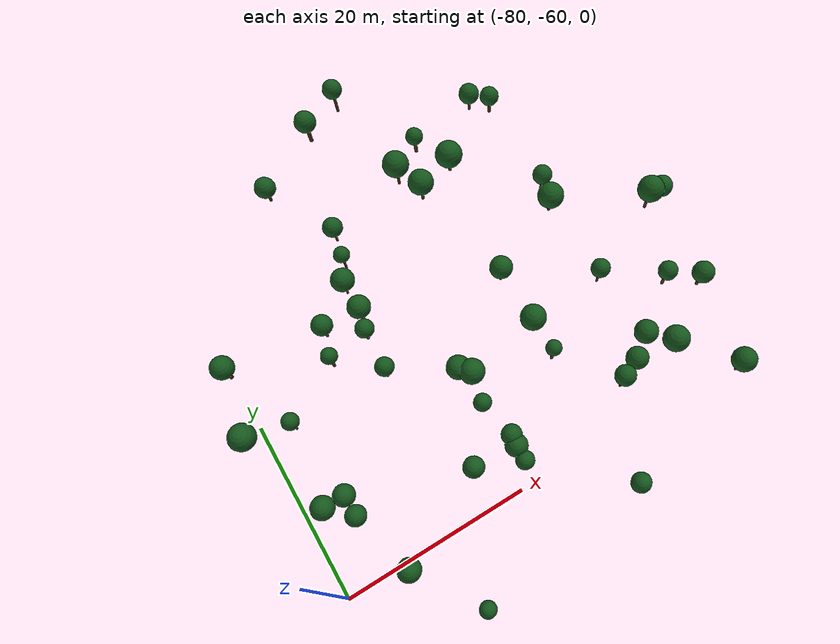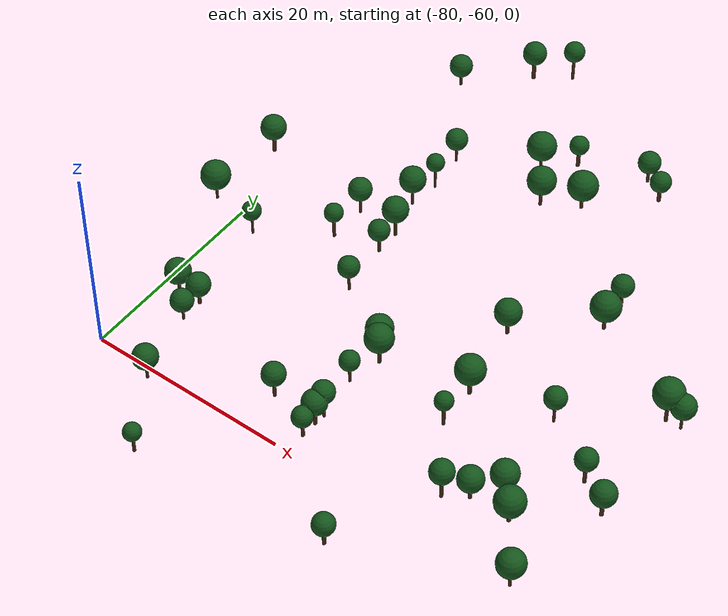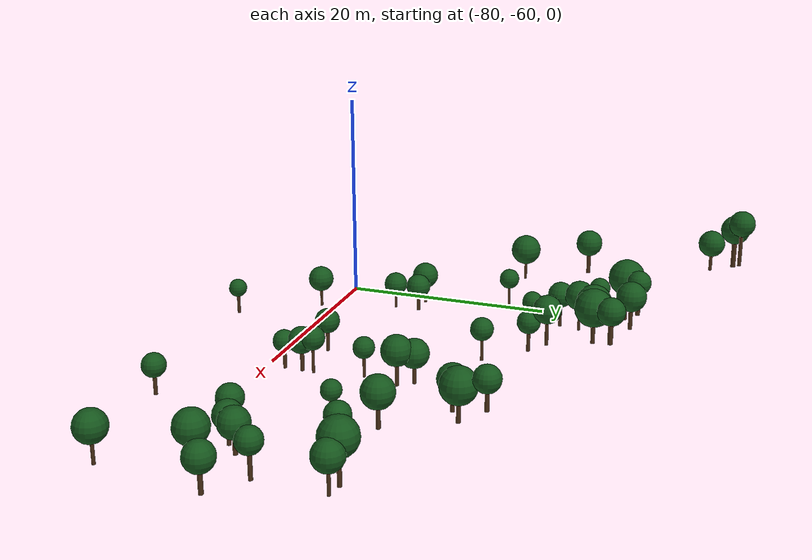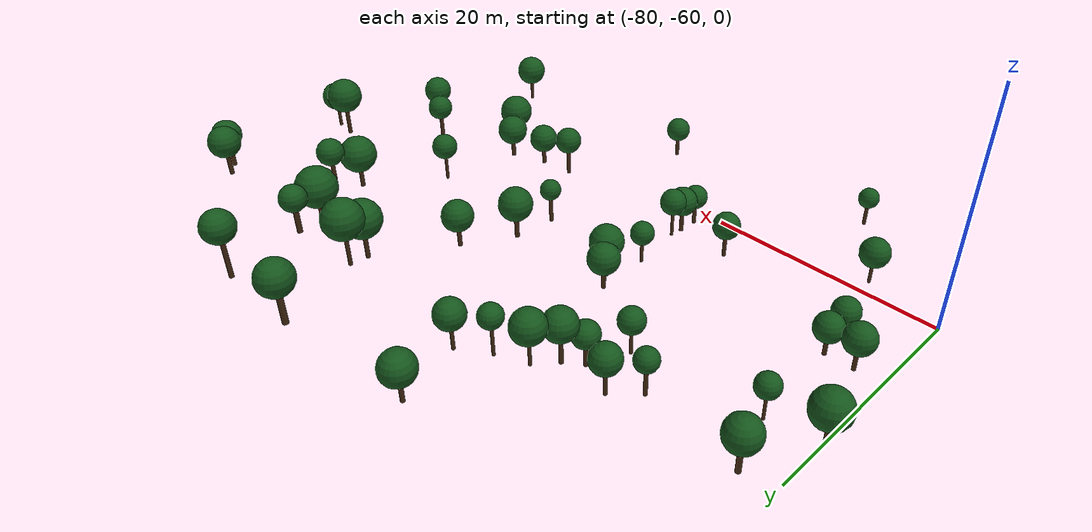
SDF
<sdf version="1.10">
 <world name="hiking_lora_world">
  <model name="lower_dense_forest_trees">
   <static>true</static>
   <link name="trees">
    <visual name="trunk_0">
     <pose>-76.614 -42.5169 2.585 0 0 0</pose>
     <geometry><cylinder><radius>0.1109</radius><length>2.4331</length></cylinder></geometry>
     <material><ambient>0.2016 0.12240000000000001 0.0576 1</ambient><diffuse>0.28 0.17 0.08 1</diffuse></material>
    </visual>
    <visual name="canopy_0">
     <pose>-76.614 -42.5169 4.3161 0 0 0</pose>
     <geometry><sphere><radius>0.9356</radius></sphere></geometry>
     <material>
      <ambient>0.0576 0.24480000000000002 0.07919999999999999 1</ambient>
      <diffuse>0.08 0.34 0.11 1</diffuse>
     </material>
    </visual>
    <visual name="trunk_1">
     <pose>-64.9791 -35.9901 4.2843 0 0 0</pose>
     <geometry><cylinder><radius>0.1581</radius><length>2.5914</length></cylinder></geometry>
     <material><ambient>0.2016 0.12240000000000001 0.0576 1</ambient><diffuse>0.28 0.17 0.08 1</diffuse></material>
    </visual>
    <visual name="canopy_1">
     <pose>-64.9791 -35.9901 6.2754 0 0 0</pose>
     <geometry><sphere><radius>1.2644</radius></sphere></geometry>
     <material>
      <ambient>0.0576 0.24480000000000002 0.07919999999999999 1</ambient>
      <diffuse>0.08 0.34 0.11 1</diffuse>
     </material>
    </visual>
    <visual name="trunk_2">
     <pose>-75.5056 -53.8502 1.2799 0 0 0</pose>
     <geometry><cylinder><radius>0.123</radius><length>1.8598</length></cylinder></geometry>
     <material><ambient>0.2016 0.12240000000000001 0.0576 1</ambient><diffuse>0.28 0.17 0.08 1</diffuse></material>
    </visual>
    <visual name="canopy_2">
     <pose>-75.5056 -53.8502 2.8226 0 0 0</pose>
     <geometry><sphere><radius>1.114</radius></sphere></geometry>
     <material>
      <ambient>0.0576 0.24480000000000002 0.07919999999999999 1</ambient>
      <diffuse>0.08 0.34 0.11 1</diffuse>
     </material>
    </visual>
    <visual name="trunk_3">
     <pose>-49.5615 -49.6476 1.6504 0 0 0</pose>
     <geometry><cylinder><radius>0.165</radius><length>2.6007</length></cylinder></geometry>
     <material><ambient>0.2016 0.12240000000000001 0.0576 1</ambient><diffuse>0.28 0.17 0.08 1</diffuse></material>
    </visual>
    <visual name="canopy_3">
     <pose>-49.5615 -49.6476 3.4428 0 0 0</pose>
     <geometry><sphere><radius>0.8948</radius></sphere></geometry>
     <material>
      <ambient>0.0576 0.24480000000000002 0.07919999999999999 1</ambient>
      <diffuse>0.08 0.34 0.11 1</diffuse>
     </material>
    </visual>
    <visual name="trunk_4">
     <pose>-63.9276 -31.3282 7.3882 0 0 0</pose>
     <geometry><cylinder><radius>0.1149</radius><length>2.6266</length></cylinder></geometry>
     <material><ambient>0.2016 0.12240000000000001 0.0576 1</ambient><diffuse>0.28 0.17 0.08 1</diffuse></material>
    </visual>
    <visual name="canopy_4">
     <pose>-63.9276 -31.3282 9.1751 0 0 0</pose>
     <geometry><sphere><radius>0.8612</radius></sphere></geometry>
     <material>
      <ambient>0.0576 0.24480000000000002 0.07919999999999999 1</ambient>
      <diffuse>0.08 0.34 0.11 1</diffuse>
     </material>
    </visual>
    <visual name="trunk_5">
     <pose>-38.4187 -55.8014 2.8603 0 0 0</pose>
     <geometry><cylinder><radius>0.1857</radius><length>1.8001</length></cylinder></geometry>
     <material><ambient>0.2016 0.12240000000000001 0.0576 1</ambient><diffuse>0.28 0.17 0.08 1</diffuse></material>
    </visual>
    <visual name="canopy_5">
     <pose>-38.4187 -55.8014 4.5536 0 0 0</pose>
     <geometry><sphere><radius>1.4423</radius></sphere></geometry>
     <material>
      <ambient>0.0576 0.24480000000000002 0.07919999999999999 1</ambient>
      <diffuse>0.08 0.34 0.11 1</diffuse>
     </material>
    </visual>
    <visual name="trunk_6">
     <pose>-41.6457 -34.5903 8.6055 0 0 0</pose>
     <geometry><cylinder><radius>0.1597</radius><length>1.8486</length></cylinder></geometry>
     <material><ambient>0.2016 0.12240000000000001 0.0576 1</ambient><diffuse>0.28 0.17 0.08 1</diffuse></material>
    </visual>
    <visual name="canopy_6">
     <pose>-41.6457 -34.5903 10.1004 0 0 0</pose>
     <geometry><sphere><radius>1.0375</radius></sphere></geometry>
     <material>
      <ambient>0.0576 0.24480000000000002 0.07919999999999999 1</ambient>
      <diffuse>0.08 0.34 0.11 1</diffuse>
     </material>
    </visual>
    <visual name="trunk_7">
     <pose>-43.3475 -26.7072 13.9483 0 0 0</pose>
     <geometry><cylinder><radius>0.1753</radius><length>1.7565</length></cylinder></geometry>
     <material><ambient>0.2016 0.12240000000000001 0.0576 1</ambient><diffuse>0.28 0.17 0.08 1</diffuse></material>
    </visual>
    <visual name="canopy_7">
     <pose>-43.3475 -26.7072 15.3506 0 0 0</pose>
     <geometry><sphere><radius>0.9527</radius></sphere></geometry>
     <material>
      <ambient>0.0576 0.24480000000000002 0.07919999999999999 1</ambient>
      <diffuse>0.08 0.34 0.11 1</diffuse>
     </material>
    </visual>
    <visual name="trunk_8">
     <pose>-69.17 -35.7753 4.3756 0 0 0</pose>
     <geometry><cylinder><radius>0.1408</radius><length>2.3556</length></cylinder></geometry>
     <material><ambient>0.2016 0.12240000000000001 0.0576 1</ambient><diffuse>0.28 0.17 0.08 1</diffuse></material>
    </visual>
    <visual name="canopy_8">
     <pose>-69.17 -35.7753 6.1782 0 0 0</pose>
     <geometry><sphere><radius>1.1361</radius></sphere></geometry>
     <material>
      <ambient>0.0576 0.24480000000000002 0.07919999999999999 1</ambient>
      <diffuse>0.08 0.34 0.11 1</diffuse>
     </material>
    </visual>
    <visual name="trunk_9">
     <pose>-32.4104 -41.618 6.9314 0 0 0</pose>
     <geometry><cylinder><radius>0.1631</radius><length>2.7642</length></cylinder></geometry>
     <material><ambient>0.2016 0.12240000000000001 0.0576 1</ambient><diffuse>0.28 0.17 0.08 1</diffuse></material>
    </visual>
    <visual name="canopy_9">
     <pose>-32.4104 -41.618 9.1032 0 0 0</pose>
     <geometry><sphere><radius>1.4358</radius></sphere></geometry>
     <material>
      <ambient>0.0576 0.24480000000000002 0.07919999999999999 1</ambient>
      <diffuse>0.08 0.34 0.11 1</diffuse>
     </material>
    </visual>
    <visual name="trunk_10">
     <pose>-65.0804 -33.2287 5.954 0 0 0</pose>
     <geometry><cylinder><radius>0.1191</radius><length>2.4591</length></cylinder></geometry>
     <material><ambient>0.2016 0.12240000000000001 0.0576 1</ambient><diffuse>0.28 0.17 0.08 1</diffuse></material>
    </visual>
    <visual name="canopy_10">
     <pose>-65.0804 -33.2287 7.8734 0 0 0</pose>
     <geometry><sphere><radius>1.2543</radius></sphere></geometry>
     <material>
      <ambient>0.0576 0.24480000000000002 0.07919999999999999 1</ambient>
      <diffuse>0.08 0.34 0.11 1</diffuse>
     </material>
    </visual>
    <visual name="trunk_11">
     <pose>-53.4656 -29.7979 10.0758 0 0 0</pose>
     <geometry><cylinder><radius>0.15</radius><length>2.2625</length></cylinder></geometry>
     <material><ambient>0.2016 0.12240000000000001 0.0576 1</ambient><diffuse>0.28 0.17 0.08 1</diffuse></material>
    </visual>
    <visual name="canopy_11">
     <pose>-53.4656 -29.7979 11.9419 0 0 0</pose>
     <geometry><sphere><radius>1.3361</radius></sphere></geometry>
     <material>
      <ambient>0.0576 0.24480000000000002 0.07919999999999999 1</ambient>
      <diffuse>0.08 0.34 0.11 1</diffuse>
     </material>
    </visual>
    <visual name="trunk_12">
     <pose>-30.8941 -41.6924 6.8024 0 0 0</pose>
     <geometry><cylinder><radius>0.1278</radius><length>2.1732</length></cylinder></geometry>
     <material><ambient>0.2016 0.12240000000000001 0.0576 1</ambient><diffuse>0.28 0.17 0.08 1</diffuse></material>
    </visual>
    <visual name="canopy_12">
     <pose>-30.8941 -41.6924 8.5277 0 0 0</pose>
     <geometry><sphere><radius>1.1614</radius></sphere></geometry>
     <material>
      <ambient>0.0576 0.24480000000000002 0.07919999999999999 1</ambient>
      <diffuse>0.08 0.34 0.11 1</diffuse>
     </material>
    </visual>
    <visual name="trunk_13">
     <pose>-70.096 -38.5743 3.0629 0 0 0</pose>
     <geometry><cylinder><radius>0.154</radius><length>2.5491</length></cylinder></geometry>
     <material><ambient>0.2016 0.12240000000000001 0.0576 1</ambient><diffuse>0.28 0.17 0.08 1</diffuse></material>
    </visual>
    <visual name="canopy_13">
     <pose>-70.096 -38.5743 4.8388 0 0 0</pose>
     <geometry><sphere><radius>0.9116</radius></sphere></geometry>
     <material>
      <ambient>0.0576 0.24480000000000002 0.07919999999999999 1</ambient>
      <diffuse>0.08 0.34 0.11 1</diffuse>
     </material>
    </visual>
    <visual name="trunk_14">
     <pose>-45.1609 -25.7392 14.4449 0 0 0</pose>
     <geometry><cylinder><radius>0.1375</radius><length>1.7405</length></cylinder></geometry>
     <material><ambient>0.2016 0.12240000000000001 0.0576 1</ambient><diffuse>0.28 0.17 0.08 1</diffuse></material>
    </visual>
    <visual name="canopy_14">
     <pose>-45.1609 -25.7392 15.874 0 0 0</pose>
     <geometry><sphere><radius>1.0159</radius></sphere></geometry>
     <material>
      <ambient>0.0576 0.24480000000000002 0.07919999999999999 1</ambient>
      <diffuse>0.08 0.34 0.11 1</diffuse>
     </material>
    </visual>
    <visual name="trunk_15">
     <pose>-59.0176 -50.6701 1.4526 0 0 0</pose>
     <geometry><cylinder><radius>0.1326</radius><length>2.2052</length></cylinder></geometry>
     <material><ambient>0.2016 0.12240000000000001 0.0576 1</ambient><diffuse>0.28 0.17 0.08 1</diffuse></material>
    </visual>
    <visual name="canopy_15">
     <pose>-59.0176 -50.6701 3.0916 0 0 0</pose>
     <geometry><sphere><radius>0.9753</radius></sphere></geometry>
     <material>
      <ambient>0.0576 0.24480000000000002 0.07919999999999999 1</ambient>
      <diffuse>0.08 0.34 0.11 1</diffuse>
     </material>
    </visual>
    <visual name="trunk_16">
     <pose>-81.1437 -42.0716 4.0097 0 0 0</pose>
     <geometry><cylinder><radius>0.1234</radius><length>2.2291</length></cylinder></geometry>
     <material><ambient>0.2016 0.12240000000000001 0.0576 1</ambient><diffuse>0.28 0.17 0.08 1</diffuse></material>
    </visual>
    <visual name="canopy_16">
     <pose>-81.1437 -42.0716 5.9072 0 0 0</pose>
     <geometry><sphere><radius>1.4235</radius></sphere></geometry>
     <material>
      <ambient>0.0576 0.24480000000000002 0.07919999999999999 1</ambient>
      <diffuse>0.08 0.34 0.11 1</diffuse>
     </material>
    </visual>
    <visual name="trunk_17">
     <pose>-40.5169 -53.4657 2.6 0 0 0</pose>
     <geometry><cylinder><radius>0.183</radius><length>1.9082</length></cylinder></geometry>
     <material><ambient>0.2016 0.12240000000000001 0.0576 1</ambient><diffuse>0.28 0.17 0.08 1</diffuse></material>
    </visual>
    <visual name="canopy_17">
     <pose>-40.5169 -53.4657 4.2686 0 0 0</pose>
     <geometry><sphere><radius>1.2991</radius></sphere></geometry>
     <material>
      <ambient>0.0576 0.24480000000000002 0.07919999999999999 1</ambient>
      <diffuse>0.08 0.34 0.11 1</diffuse>
     </material>
    </visual>
    <visual name="trunk_18">
     <pose>-41.0281 -45.4137 4.1091 0 0 0</pose>
     <geometry><cylinder><radius>0.1293</radius><length>2.5477</length></cylinder></geometry>
     <material><ambient>0.2016 0.12240000000000001 0.0576 1</ambient><diffuse>0.28 0.17 0.08 1</diffuse></material>
    </visual>
    <visual name="canopy_18">
     <pose>-41.0281 -45.4137 5.9632 0 0 0</pose>
     <geometry><sphere><radius>1.0551</radius></sphere></geometry>
     <material>
      <ambient>0.0576 0.24480000000000002 0.07919999999999999 1</ambient>
      <diffuse>0.08 0.34 0.11 1</diffuse>
     </material>
    </visual>
    <visual name="trunk_19">
     <pose>-49.6064 -45.7073 1.8822 0 0 0</pose>
     <geometry><cylinder><radius>0.1899</radius><length>2.381</length></cylinder></geometry>
     <material><ambient>0.2016 0.12240000000000001 0.0576 1</ambient><diffuse>0.28 0.17 0.08 1</diffuse></material>
    </visual>
    <visual name="canopy_19">
     <pose>-49.6064 -45.7073 3.8648 0 0 0</pose>
     <geometry><sphere><radius>1.4403</radius></sphere></geometry>
     <material>
      <ambient>0.0576 0.24480000000000002 0.07919999999999999 1</ambient>
      <diffuse>0.08 0.34 0.11 1</diffuse>
     </material>
    </visual>
    <visual name="trunk_20">
     <pose>-59.1739 -46.0944 1.3774 0 0 0</pose>
     <geometry><cylinder><radius>0.1766</radius><length>2.0547</length></cylinder></geometry>
     <material><ambient>0.2016 0.12240000000000001 0.0576 1</ambient><diffuse>0.28 0.17 0.08 1</diffuse></material>
    </visual>
    <visual name="canopy_20">
     <pose>-59.1739 -46.0944 3.132 0 0 0</pose>
     <geometry><sphere><radius>1.3224</radius></sphere></geometry>
     <material>
      <ambient>0.0576 0.24480000000000002 0.07919999999999999 1</ambient>
      <diffuse>0.08 0.34 0.11 1</diffuse>
     </material>
    </visual>
    <visual name="trunk_21">
     <pose>-63.2819 -55.9361 1.49 0 0 0</pose>
     <geometry><cylinder><radius>0.1602</radius><length>2.28</length></cylinder></geometry>
     <material><ambient>0.2016 0.12240000000000001 0.0576 1</ambient><diffuse>0.28 0.17 0.08 1</diffuse></material>
    </visual>
    <visual name="canopy_21">
     <pose>-63.2819 -55.9361 3.255 0 0 0</pose>
     <geometry><sphere><radius>1.1364</radius></sphere></geometry>
     <material>
      <ambient>0.0576 0.24480000000000002 0.07919999999999999 1</ambient>
      <diffuse>0.08 0.34 0.11 1</diffuse>
     </material>
    </visual>
    <visual name="trunk_22">
     <pose>-57.0904 -19.813 16.1434 0 0 0</pose>
     <geometry><cylinder><radius>0.1333</radius><length>2.6838</length></cylinder></geometry>
     <material><ambient>0.2016 0.12240000000000001 0.0576 1</ambient><diffuse>0.28 0.17 0.08 1</diffuse></material>
    </visual>
    <visual name="canopy_22">
     <pose>-57.0904 -19.813 18.0063 0 0 0</pose>
     <geometry><sphere><radius>0.9473</radius></sphere></geometry>
     <material>
      <ambient>0.0576 0.24480000000000002 0.07919999999999999 1</ambient>
      <diffuse>0.08 0.34 0.11 1</diffuse>
     </material>
    </visual>
    <visual name="trunk_23">
     <pose>-45.0446 -56.187 1.7982 0 0 0</pose>
     <geometry><cylinder><radius>0.1657</radius><length>2.7383</length></cylinder></geometry>
     <material><ambient>0.2016 0.12240000000000001 0.0576 1</ambient><diffuse>0.28 0.17 0.08 1</diffuse></material>
    </visual>
    <visual name="canopy_23">
     <pose>-45.0446 -56.187 3.8049 0 0 0</pose>
     <geometry><sphere><radius>1.1591</radius></sphere></geometry>
     <material>
      <ambient>0.0576 0.24480000000000002 0.07919999999999999 1</ambient>
      <diffuse>0.08 0.34 0.11 1</diffuse>
     </material>
    </visual>
    <visual name="trunk_24">
     <pose>-58.5082 -57.9896 1.3568 0 0 0</pose>
     <geometry><cylinder><radius>0.1647</radius><length>2.0135</length></cylinder></geometry>
     <material><ambient>0.2016 0.12240000000000001 0.0576 1</ambient><diffuse>0.28 0.17 0.08 1</diffuse></material>
    </visual>
    <visual name="canopy_24">
     <pose>-58.5082 -57.9896 2.9152 0 0 0</pose>
     <geometry><sphere><radius>1.003</radius></sphere></geometry>
     <material>
      <ambient>0.0576 0.24480000000000002 0.07919999999999999 1</ambient>
      <diffuse>0.08 0.34 0.11 1</diffuse>
     </material>
    </visual>
    <visual name="trunk_25">
     <pose>-58.3713 -55.2015 1.6875 0 0 0</pose>
     <geometry><cylinder><radius>0.1293</radius><length>2.6751</length></cylinder></geometry>
     <material><ambient>0.2016 0.12240000000000001 0.0576 1</ambient><diffuse>0.28 0.17 0.08 1</diffuse></material>
    </visual>
    <visual name="canopy_25">
     <pose>-58.3713 -55.2015 3.6313 0 0 0</pose>
     <geometry><sphere><radius>1.1022</radius></sphere></geometry>
     <material>
      <ambient>0.0576 0.24480000000000002 0.07919999999999999 1</ambient>
      <diffuse>0.08 0.34 0.11 1</diffuse>
     </material>
    </visual>
    <visual name="trunk_26">
     <pose>-79.5424 -35.4306 5.9688 0 0 0</pose>
     <geometry><cylinder><radius>0.1836</radius><length>2.3159</length></cylinder></geometry>
     <material><ambient>0.2016 0.12240000000000001 0.0576 1</ambient><diffuse>0.28 0.17 0.08 1</diffuse></material>
    </visual>
    <visual name="canopy_26">
     <pose>-79.5424 -35.4306 7.8004 0 0 0</pose>
     <geometry><sphere><radius>1.2248</radius></sphere></geometry>
     <material>
      <ambient>0.0576 0.24480000000000002 0.07919999999999999 1</ambient>
      <diffuse>0.08 0.34 0.11 1</diffuse>
     </material>
    </visual>
    <visual name="trunk_27">
     <pose>-32.1236 -51.5701 4.3531 0 0 0</pose>
     <geometry><cylinder><radius>0.1821</radius><length>2.1594</length></cylinder></geometry>
     <material><ambient>0.2016 0.12240000000000001 0.0576 1</ambient><diffuse>0.28 0.17 0.08 1</diffuse></material>
    </visual>
    <visual name="canopy_27">
     <pose>-32.1236 -51.5701 6.0945 0 0 0</pose>
     <geometry><sphere><radius>1.2031</radius></sphere></geometry>
     <material>
      <ambient>0.0576 0.24480000000000002 0.07919999999999999 1</ambient>
      <diffuse>0.08 0.34 0.11 1</diffuse>
     </material>
    </visual>
    <visual name="trunk_28">
     <pose>-49.9816 -65.9438 1.3911 0 0 0</pose>
     <geometry><cylinder><radius>0.1689</radius><length>2.0822</length></cylinder></geometry>
     <material><ambient>0.2016 0.12240000000000001 0.0576 1</ambient><diffuse>0.28 0.17 0.08 1</diffuse></material>
    </visual>
    <visual name="canopy_28">
     <pose>-49.9816 -65.9438 3.0213 0 0 0</pose>
     <geometry><sphere><radius>1.0711</radius></sphere></geometry>
     <material>
      <ambient>0.0576 0.24480000000000002 0.07919999999999999 1</ambient>
      <diffuse>0.08 0.34 0.11 1</diffuse>
     </material>
    </visual>
    <visual name="trunk_29">
     <pose>-58.256 -47.3686 1.5906 0 0 0</pose>
     <geometry><cylinder><radius>0.1738</radius><length>2.4811</length></cylinder></geometry>
     <material><ambient>0.2016 0.12240000000000001 0.0576 1</ambient><diffuse>0.28 0.17 0.08 1</diffuse></material>
    </visual>
    <visual name="canopy_29">
     <pose>-58.256 -47.3686 3.5969 0 0 0</pose>
     <geometry><sphere><radius>1.3923</radius></sphere></geometry>
     <material>
      <ambient>0.0576 0.24480000000000002 0.07919999999999999 1</ambient>
      <diffuse>0.08 0.34 0.11 1</diffuse>
     </material>
    </visual>
    <visual name="trunk_30">
     <pose>-34.3995 -61.472 3.7152 0 0 0</pose>
     <geometry><cylinder><radius>0.1404</radius><length>2.2884</length></cylinder></geometry>
     <material><ambient>0.2016 0.12240000000000001 0.0576 1</ambient><diffuse>0.28 0.17 0.08 1</diffuse></material>
    </visual>
    <visual name="canopy_30">
     <pose>-34.3995 -61.472 5.5873 0 0 0</pose>
     <geometry><sphere><radius>1.3235</radius></sphere></geometry>
     <material>
      <ambient>0.0576 0.24480000000000002 0.07919999999999999 1</ambient>
      <diffuse>0.08 0.34 0.11 1</diffuse>
     </material>
    </visual>
    <visual name="trunk_31">
     <pose>-41.9185 -36.7084 7.3691 0 0 0</pose>
     <geometry><cylinder><radius>0.1651</radius><length>2.0433</length></cylinder></geometry>
     <material><ambient>0.2016 0.12240000000000001 0.0576 1</ambient><diffuse>0.28 0.17 0.08 1</diffuse></material>
    </visual>
    <visual name="canopy_31">
     <pose>-41.9185 -36.7084 9.1665 0 0 0</pose>
     <geometry><sphere><radius>1.4104</radius></sphere></geometry>
     <material>
      <ambient>0.0576 0.24480000000000002 0.07919999999999999 1</ambient>
      <diffuse>0.08 0.34 0.11 1</diffuse>
     </material>
    </visual>
    <visual name="trunk_32">
     <pose>-75.5722 -51.5048 1.2686 0 0 0</pose>
     <geometry><cylinder><radius>0.166</radius><length>1.8372</length></cylinder></geometry>
     <material><ambient>0.2016 0.12240000000000001 0.0576 1</ambient><diffuse>0.28 0.17 0.08 1</diffuse></material>
    </visual>
    <visual name="canopy_32">
     <pose>-75.5722 -51.5048 2.831 0 0 0</pose>
     <geometry><sphere><radius>1.1706</radius></sphere></geometry>
     <material>
      <ambient>0.0576 0.24480000000000002 0.07919999999999999 1</ambient>
      <diffuse>0.08 0.34 0.11 1</diffuse>
     </material>
    </visual>
    <visual name="trunk_33">
     <pose>-65.5326 -37.7403 3.0326 0 0 0</pose>
     <geometry><cylinder><radius>0.1648</radius><length>2.1476</length></cylinder></geometry>
     <material><ambient>0.2016 0.12240000000000001 0.0576 1</ambient><diffuse>0.28 0.17 0.08 1</diffuse></material>
    </visual>
    <visual name="canopy_33">
     <pose>-65.5326 -37.7403 4.6806 0 0 0</pose>
     <geometry><sphere><radius>1.0442</radius></sphere></geometry>
     <material>
      <ambient>0.0576 0.24480000000000002 0.07919999999999999 1</ambient>
      <diffuse>0.08 0.34 0.11 1</diffuse>
     </material>
    </visual>
    <visual name="trunk_34">
     <pose>-49.8929 -39.6818 4.0378 0 0 0</pose>
     <geometry><cylinder><radius>0.1708</radius><length>2.0437</length></cylinder></geometry>
     <material><ambient>0.2016 0.12240000000000001 0.0576 1</ambient><diffuse>0.28 0.17 0.08 1</diffuse></material>
    </visual>
    <visual name="canopy_34">
     <pose>-49.8929 -39.6818 5.7567 0 0 0</pose>
     <geometry><sphere><radius>1.2675</radius></sphere></geometry>
     <material>
      <ambient>0.0576 0.24480000000000002 0.07919999999999999 1</ambient>
      <diffuse>0.08 0.34 0.11 1</diffuse>
     </material>
    </visual>
    <visual name="trunk_35">
     <pose>-69.071 -67.9866 1.4011 0 0 0</pose>
     <geometry><cylinder><radius>0.149</radius><length>2.1022</length></cylinder></geometry>
     <material><ambient>0.2016 0.12240000000000001 0.0576 1</ambient><diffuse>0.28 0.17 0.08 1</diffuse></material>
    </visual>
    <visual name="canopy_35">
     <pose>-69.071 -67.9866 2.9295 0 0 0</pose>
     <geometry><sphere><radius>0.8678</radius></sphere></geometry>
     <material>
      <ambient>0.0576 0.24480000000000002 0.07919999999999999 1</ambient>
      <diffuse>0.08 0.34 0.11 1</diffuse>
     </material>
    </visual>
    <visual name="trunk_36">
     <pose>-65.7267 -42.038 1.5671 0 0 0</pose>
     <geometry><cylinder><radius>0.1291</radius><length>2.4341</length></cylinder></geometry>
     <material><ambient>0.2016 0.12240000000000001 0.0576 1</ambient><diffuse>0.28 0.17 0.08 1</diffuse></material>
    </visual>
    <visual name="canopy_36">
     <pose>-65.7267 -42.038 3.3643 0 0 0</pose>
     <geometry><sphere><radius>1.0548</radius></sphere></geometry>
     <material>
      <ambient>0.0576 0.24480000000000002 0.07919999999999999 1</ambient>
      <diffuse>0.08 0.34 0.11 1</diffuse>
     </material>
    </visual>
    <visual name="trunk_37">
     <pose>-67.2666 -22.8147 11.5388 0 0 0</pose>
     <geometry><cylinder><radius>0.1324</radius><length>1.7085</length></cylinder></geometry>
     <material><ambient>0.2016 0.12240000000000001 0.0576 1</ambient><diffuse>0.28 0.17 0.08 1</diffuse></material>
    </visual>
    <visual name="canopy_37">
     <pose>-67.2666 -22.8147 12.9794 0 0 0</pose>
     <geometry><sphere><radius>1.0662</radius></sphere></geometry>
     <material>
      <ambient>0.0576 0.24480000000000002 0.07919999999999999 1</ambient>
      <diffuse>0.08 0.34 0.11 1</diffuse>
     </material>
    </visual>
    <visual name="trunk_38">
     <pose>-49.6551 -29.068 11.2493 0 0 0</pose>
     <geometry><cylinder><radius>0.1501</radius><length>1.9424</length></cylinder></geometry>
     <material><ambient>0.2016 0.12240000000000001 0.0576 1</ambient><diffuse>0.28 0.17 0.08 1</diffuse></material>
    </visual>
    <visual name="canopy_38">
     <pose>-49.6551 -29.068 12.9912 0 0 0</pose>
     <geometry><sphere><radius>1.4013</radius></sphere></geometry>
     <material>
      <ambient>0.0576 0.24480000000000002 0.07919999999999999 1</ambient>
      <diffuse>0.08 0.34 0.11 1</diffuse>
     </material>
    </visual>
    <visual name="trunk_39">
     <pose>-58.4854 -56.3054 1.4555 0 0 0</pose>
     <geometry><cylinder><radius>0.1774</radius><length>2.2111</length></cylinder></geometry>
     <material><ambient>0.2016 0.12240000000000001 0.0576 1</ambient><diffuse>0.28 0.17 0.08 1</diffuse></material>
    </visual>
    <visual name="canopy_39">
     <pose>-58.4854 -56.3054 3.2287 0 0 0</pose>
     <geometry><sphere><radius>1.2139</radius></sphere></geometry>
     <material>
      <ambient>0.0576 0.24480000000000002 0.07919999999999999 1</ambient>
      <diffuse>0.08 0.34 0.11 1</diffuse>
     </material>
    </visual>
    <visual name="trunk_40">
     <pose>-54.9858 -27.695 11.5801 0 0 0</pose>
     <geometry><cylinder><radius>0.1282</radius><length>2.6403</length></cylinder></geometry>
     <material><ambient>0.2016 0.12240000000000001 0.0576 1</ambient><diffuse>0.28 0.17 0.08 1</diffuse></material>
    </visual>
    <visual name="canopy_40">
     <pose>-54.9858 -27.695 13.6422 0 0 0</pose>
     <geometry><sphere><radius>1.349</radius></sphere></geometry>
     <material>
      <ambient>0.0576 0.24480000000000002 0.07919999999999999 1</ambient>
      <diffuse>0.08 0.34 0.11 1</diffuse>
     </material>
    </visual>
    <visual name="trunk_41">
     <pose>-77.8902 -51.5701 1.4174 0 0 0</pose>
     <geometry><cylinder><radius>0.1631</radius><length>2.1348</length></cylinder></geometry>
     <material><ambient>0.2016 0.12240000000000001 0.0576 1</ambient><diffuse>0.28 0.17 0.08 1</diffuse></material>
    </visual>
    <visual name="canopy_41">
     <pose>-77.8902 -51.5701 3.1745 0 0 0</pose>
     <geometry><sphere><radius>1.254</radius></sphere></geometry>
     <material>
      <ambient>0.0576 0.24480000000000002 0.07919999999999999 1</ambient>
      <diffuse>0.08 0.34 0.11 1</diffuse>
     </material>
    </visual>
    <visual name="trunk_42">
     <pose>-35.2063 -49.4628 4.3159 0 0 0</pose>
     <geometry><cylinder><radius>0.1686</radius><length>2.4489</length></cylinder></geometry>
     <material><ambient>0.2016 0.12240000000000001 0.0576 1</ambient><diffuse>0.28 0.17 0.08 1</diffuse></material>
    </visual>
    <visual name="canopy_42">
     <pose>-35.2063 -49.4628 6.1234 0 0 0</pose>
     <geometry><sphere><radius>1.0601</radius></sphere></geometry>
     <material>
      <ambient>0.0576 0.24480000000000002 0.07919999999999999 1</ambient>
      <diffuse>0.08 0.34 0.11 1</diffuse>
     </material>
    </visual>
    <visual name="trunk_43">
     <pose>-63.3731 -28.8443 8.8845 0 0 0</pose>
     <geometry><cylinder><radius>0.1209</radius><length>2.0969</length></cylinder></geometry>
     <material><ambient>0.2016 0.12240000000000001 0.0576 1</ambient><diffuse>0.28 0.17 0.08 1</diffuse></material>
    </visual>
    <visual name="canopy_43">
     <pose>-63.3731 -28.8443 10.5019 0 0 0</pose>
     <geometry><sphere><radius>1.0343</radius></sphere></geometry>
     <material>
      <ambient>0.0576 0.24480000000000002 0.07919999999999999 1</ambient>
      <diffuse>0.08 0.34 0.11 1</diffuse>
     </material>
    </visual>
    <visual name="trunk_44">
     <pose>-51.9672 -26.3125 12.9484 0 0 0</pose>
     <geometry><cylinder><radius>0.1743</radius><length>1.977</length></cylinder></geometry>
     <material><ambient>0.2016 0.12240000000000001 0.0576 1</ambient><diffuse>0.28 0.17 0.08 1</diffuse></material>
    </visual>
    <visual name="canopy_44">
     <pose>-51.9672 -26.3125 14.4195 0 0 0</pose>
     <geometry><sphere><radius>0.8775</radius></sphere></geometry>
     <material>
      <ambient>0.0576 0.24480000000000002 0.07919999999999999 1</ambient>
      <diffuse>0.08 0.34 0.11 1</diffuse>
     </material>
    </visual>
    <visual name="trunk_45">
     <pose>-60.7997 -20.5283 14.5749 0 0 0</pose>
     <geometry><cylinder><radius>0.1798</radius><length>2.3587</length></cylinder></geometry>
     <material><ambient>0.2016 0.12240000000000001 0.0576 1</ambient><diffuse>0.28 0.17 0.08 1</diffuse></material>
    </visual>
    <visual name="canopy_45">
     <pose>-60.7997 -20.5283 16.3501 0 0 0</pose>
     <geometry><sphere><radius>1.0834</radius></sphere></geometry>
     <material>
      <ambient>0.0576 0.24480000000000002 0.07919999999999999 1</ambient>
      <diffuse>0.08 0.34 0.11 1</diffuse>
     </material>
    </visual>
    <visual name="trunk_46">
     <pose>-42.7836 -55.2057 1.9502 0 0 0</pose>
     <geometry><cylinder><radius>0.1774</radius><length>1.8384</length></cylinder></geometry>
     <material><ambient>0.2016 0.12240000000000001 0.0576 1</ambient><diffuse>0.28 0.17 0.08 1</diffuse></material>
    </visual>
    <visual name="canopy_46">
     <pose>-42.7836 -55.2057 3.5485 0 0 0</pose>
     <geometry><sphere><radius>1.2346</radius></sphere></geometry>
     <material>
      <ambient>0.0576 0.24480000000000002 0.07919999999999999 1</ambient>
      <diffuse>0.08 0.34 0.11 1</diffuse>
     </material>
    </visual>
    <visual name="trunk_47">
     <pose>-73.567 -61.068 1.4268 0 0 0</pose>
     <geometry><cylinder><radius>0.1311</radius><length>2.1537</length></cylinder></geometry>
     <material><ambient>0.2016 0.12240000000000001 0.0576 1</ambient><diffuse>0.28 0.17 0.08 1</diffuse></material>
    </visual>
    <visual name="canopy_47">
     <pose>-73.567 -61.068 3.175 0 0 0</pose>
     <geometry><sphere><radius>1.2207</radius></sphere></geometry>
     <material>
      <ambient>0.0576 0.24480000000000002 0.07919999999999999 1</ambient>
      <diffuse>0.08 0.34 0.11 1</diffuse>
     </material>
    </visual>
   </link>
  </model>
 </world>
</sdf>
